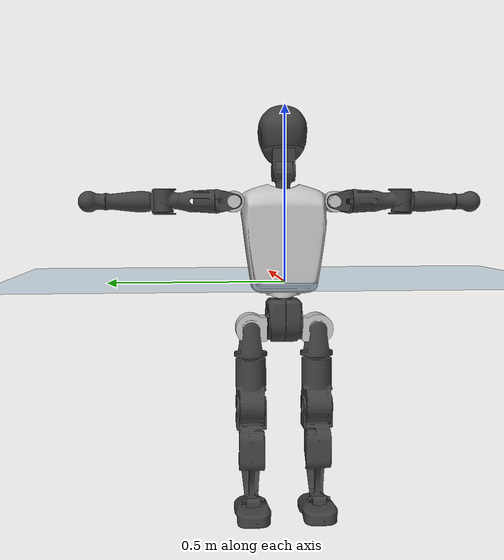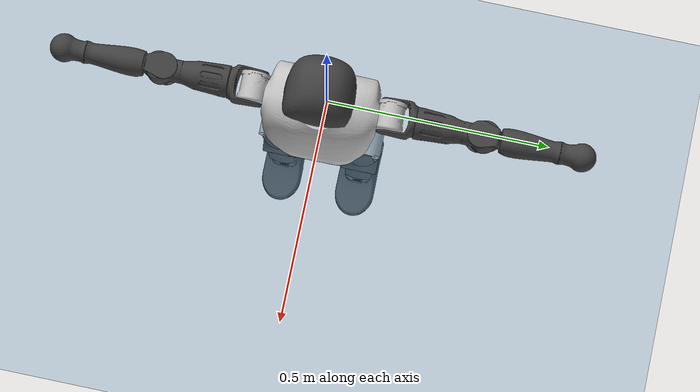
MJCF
<mujoco model="T1">
  <compiler angle="radian" assetdir="assets" balanceinertia="true" inertiafromgeom="false"/>

  <option timestep="0.005" density="1.2" viscosity="2e-05"/>

  <size nkey="1"/>

  <visual>
    <quality shadowsize="8192"/>
    <map shadowclip="0.5"/>
  </visual>

  <default>
    <default class="/">
      <joint armature="0.01" damping="0.01" frictionloss="0.1"/>
      <geom contype="0" conaffinity="0" group="1" solref="-1000 -80"/>
      <site size="0.01 0.005 0.005" group="5"/>
      <general forcelimited="true" biastype="affine" gainprm="25" biasprm="0 -25 -0.6"/>
      <default class="t1">
        <geom rgba="0.25 0.25 0.25 1"/>
        <default class="visual">
          <geom type="mesh" group="2"/>
        </default>
        <default class="collision">
          <geom group="3"/>
        </default>
        <default class="foot">
          <geom size="0.1115 0.05 0.015" type="box" condim="6" group="4" priority="1" solimp="0.015 1 0.015"/>
        </default>
        <default class="reward_collision_sphere">
          <geom group="5" rgba="1 0 0 1"/>
        </default>
      </default>
    </default>
  </default>

  <asset>
    <texture type="skybox" colorspace="auto" name="//unnamed_texture_0" builtin="gradient" rgb1="0.95 0.95 0.95" rgb2="0.95 0.95 0.95" width="100" height="600"/>
    <texture type="2d" colorspace="auto" name="texplane" builtin="checker" rgb1="0.345 0.575 0.748" rgb2="0.345 0.575 0.748" markrgb="1 1 1" width="512" height="512"/>
    <material name="MatPlane" class="/" texture="texplane" texuniform="true" texrepeat="2 2" specular="0.9"/>
    <mesh name="Trunk" class="/" file="Trunk.stl"/>
    <mesh name="H1" class="/" file="H1.stl"/>
    <mesh name="H2" class="/" file="H2.stl"/>
    <mesh name="AL1" class="/" file="AL1.stl"/>
    <mesh name="AL2" class="/" file="AL2.stl"/>
    <mesh name="AL3" class="/" file="AL3.stl"/>
    <mesh name="left_hand_link" class="/" file="left_hand_link.stl"/>
    <mesh name="AR1" class="/" file="AR1.stl"/>
    <mesh name="AR2" class="/" file="AR2.stl"/>
    <mesh name="AR3" class="/" file="AR3.stl"/>
    <mesh name="right_hand_link" class="/" file="right_hand_link.stl"/>
    <mesh name="Waist" class="/" file="Waist.stl"/>
    <mesh name="Hip_Pitch_Left" class="/" file="Hip_Pitch_Left.stl"/>
    <mesh name="Hip_Roll_Left" class="/" file="Hip_Roll_Left.stl"/>
    <mesh name="Hip_Yaw_Left" class="/" file="Hip_Yaw_Left.stl"/>
    <mesh name="Shank_Left" class="/" file="Shank_Left.stl"/>
    <mesh name="Ankle_Cross_Left" class="/" file="Ankle_Cross_Left.stl"/>
    <mesh name="left_foot_link" class="/" file="left_foot_link.stl"/>
    <mesh name="Hip_Pitch_Right" class="/" file="Hip_Pitch_Right.stl"/>
    <mesh name="Hip_Roll_Right" class="/" file="Hip_Roll_Right.stl"/>
    <mesh name="Hip_Yaw_Right" class="/" file="Hip_Yaw_Right.stl"/>
    <mesh name="Shank_Right" class="/" file="Shank_Right.stl"/>
    <mesh name="Ankle_Cross_Right" class="/" file="Ankle_Cross_Right.stl"/>
    <mesh name="right_foot_link" class="/" file="right_foot_link.stl"/>
  </asset>

  <worldbody>
    <geom name="floor" class="/" size="100 100 0.125" type="plane" group="0" material="MatPlane"/>
    <light name="toplight_shadow" class="/" pos="0 0 5" dir="0.0990148 0.0990148 -0.990148" type="directional" ambient="0.04 0.04 0.04" diffuse="0.55 0.55 0.55" specular="0.12 0.12 0.12"/>
    <light name="toplight_fill" class="/" pos="0 0 5" dir="0.0990148 0.0990148 -0.990148" type="directional" castshadow="false" ambient="0.04 0.04 0.04" diffuse="0.3 0.3 0.3" specular="0.08 0.08 0.08"/>
    <body name="trunk" childclass="t1" pos="0.000995242 -0.001394 0.000624203" quat="1 -0.000648043 0.000164094 0.000407297">
      <inertial pos="0.0418823 -0.00128311 0.107976" quat="0.999961 1.81808e-05 -0.00885755 -5.5618e-05" mass="8.7758" diaginertia="0.0236385 0.0539417 0.069869"/>
      <joint name="//unnamed_joint_0" type="free" armature="0" damping="0" frictionloss="0"/>
      <geom name="//unnamed_geom_1" class="visual" rgba="0.76 0.76 0.76 1" mesh="Trunk"/>
      <geom name="//unnamed_geom_2" class="collision" size="0.0681215 0.0908287 0.136243" pos="0.0456249 0 0.12435" type="box"/>
      <geom name="//unnamed_geom_3" class="reward_collision_sphere" size="0.104453" pos="0.0456249 0 0.103625"/>
      <geom name="//unnamed_geom_4" class="reward_collision_sphere" size="0.0136243" pos="0.0456249 0.0788965 0"/>
      <geom name="//unnamed_geom_5" class="reward_collision_sphere" size="0.0136243" pos="0.0456249 -0.0788965 0"/>
      <geom name="//unnamed_geom_6" class="reward_collision_sphere" size="0.0136243" pos="0.0456249 0.0993168 0.186525"/>
      <geom name="//unnamed_geom_7" class="reward_collision_sphere" size="0.0136243" pos="0.0456249 -0.0993168 0.186525"/>
      <site name="imu" pos="0.00312867 0.00416925 -0.00373551" size="0.00908287"/>
      <camera name="track" pos="0 -1.85639 0" quat="0.707107 0.707107 0 0" mode="trackcom"/>
      <camera name="ego_camera" pos="0.0927706 0 0.435226" quat="-0.5 -0.5 0.5 0.5"/>
      <body name="H1" pos="0.0482185 0.00119564 0.251108" quat="1 3.20428e-06 2.85558e-06 1.52922e-06">
        <inertial pos="-0.00229304 -0.00244753 0.0601527" quat="0.762305 -0.00204332 0.000800304 0.647214" mass="0.334936" diaginertia="6.2067e-05 0.000155267 0.000180221"/>
        <joint name="AAHead_yaw" pos="0 0 0" axis="-0.00169807 0.000460492 0.999998" range="-1.55249 1.55194" armature="0.00862197" damping="0.0133392" frictionloss="0.10125"/>
        <geom name="//unnamed_geom_8" class="visual" mesh="H1"/>
        <body name="H2" pos="-0.00121868 -0.000188201 0.0640698" quat="1 3.58754e-06 -7.09984e-06 -1.5216e-05">
          <inertial pos="0.00503319 0.000687025 0.102159" quat="0.988467 0.107384 -0.0767888 -0.0741908" mass="0.461839" diaginertia="0.000513447 0.00128769 0.00207226"/>
          <joint name="Head_pitch" pos="0 0 0" axis="-0.00155621 -0.999999 0.000182181" range="-1.23275 0.361303" armature="0.00817208" damping="0.00513634" frictionloss="0.0942955"/>
          <geom name="//unnamed_geom_9" class="visual" mesh="H2"/>
          <geom name="//unnamed_geom_10" class="collision" size="0.072663" pos="0.00760415 0 0.113988"/>
          <geom name="//unnamed_geom_11" class="reward_collision_sphere" size="0.0817458" pos="0.0152083 0 0.103625"/>
        </body>
      </body>
      <body name="AL1" pos="0.0442158 0.0987283 0.227834" quat="1 -0.000103878 0.000417267 2.48416e-05">
        <inertial pos="-0.000256795 0.0413441 -0.000108752" quat="0.510131 0.500485 -0.497419 0.491787" mass="0.398288" diaginertia="0.000346639 0.000884691 0.000355828"/>
        <joint name="Left_Shoulder_Pitch" pos="0 0 0" axis="-0.000278608 1 -0.000406194" range="-3.30625 1.20157" armature="0.00909587" damping="0.00665504" frictionloss="0.0902759"/>
        <geom name="//unnamed_geom_12" class="visual" rgba="0.76 0.76 0.76 1" mesh="AL1"/>
        <body name="AL2" pos="0.000415296 0.0440854 0.000818766" quat="1 0.000132617 0.000167556 0.000138767">
          <inertial pos="0.00317789 0.0353939 -0.00041247" quat="0.489233 0.511307 -0.486983 0.511921" mass="0.121232" diaginertia="0.000103347 0.0002393 0.000212754"/>
          <joint name="Left_Shoulder_Roll" pos="0 0 0" axis="-0.999999 -0.0016492 0.000270043" stiffness="0.0034932" range="-1.55386 1.73627" armature="0.00908372" damping="0.00355303" frictionloss="0.0886863"/>
          <geom name="//unnamed_geom_13" class="visual" mesh="AL2"/>
          <body name="AL3" pos="0.00198792 0.0564729 0.000124015" quat="1 2.91267e-05 0.000339883 0.000336428">
            <inertial pos="-0.00236873 0.0796591 -0.000494251" quat="0.706369 0.707843 0.000203883 7.65563e-05" mass="0.770353" diaginertia="0.00325061 0.00863683 0.000748056"/>
            <joint name="Left_Elbow_Pitch" pos="0 0 0" axis="0.00182639 -0.999998 0.000612053" range="-2.26696 2.27189" armature="0.0091101" damping="0.00799056" frictionloss="0.091342"/>
            <geom name="//unnamed_geom_14" class="visual" mesh="AL3"/>
            <geom name="//unnamed_geom_15" class="collision" size="0.0272486 0.0681215" pos="0 0.0464097 0" quat="0.707105 0.707108 0 0" type="cylinder"/>
            <geom name="//unnamed_geom_16" class="reward_collision_sphere" size="0.0326983"/>
            <body name="left_hand_link" pos="0.00101897 0.137149 -0.00122018" quat="1 6.34283e-05 -0.000722633 -0.00035968">
              <inertial pos="0.000127834 0.101658 0.000643714" quat="0.707089 0.707121 0.00215937 -0.000454905" mass="0.242304" diaginertia="0.00205668 0.00545413 0.00024645"/>
              <joint name="Left_Elbow_Yaw" pos="0 0 0" axis="0.00232329 -0.00390602 0.99999" stiffness="0.000443727" range="-2.44773 0.0221892" armature="0.00885469" damping="0.0134573" frictionloss="0.0922294"/>
              <geom name="//unnamed_geom_17" class="visual" mesh="left_hand_link"/>
              <geom name="//unnamed_geom_18" class="collision" size="0.0272486 0.0794751" pos="0 0.120665 0" quat="0.707105 0.707108 0 0" type="cylinder"/>
              <geom name="//unnamed_geom_19" class="reward_collision_sphere" size="0.0454144"/>
              <geom name="//unnamed_geom_20" class="reward_collision_sphere" size="0.0317901" pos="0 0.102101 0"/>
              <geom name="//unnamed_geom_21" class="reward_collision_sphere" size="0.0317901" pos="0 0.199562 0"/>
            </body>
          </body>
        </body>
      </body>
      <body name="AR1" pos="0.0427747 -0.0995918 0.227684" quat="1 0.000185976 0.00039991 0.000208537">
        <inertial pos="-0.000848782 -0.0433585 0.00194068" quat="0.505049 0.495235 -0.504303 0.495324" mass="0.399492" diaginertia="0.000350435 0.000874132 0.000351391"/>
        <joint name="Right_Shoulder_Pitch" pos="0 0 0" axis="0.00596677 -0.999969 -0.00521181" range="-1.20831 3.29918" armature="0.00861984" damping="0.00704522" frictionloss="0.0946956"/>
        <geom name="//unnamed_geom_22" class="visual" rgba="0.76 0.76 0.76 1" mesh="AR1"/>
        <body name="AR2" pos="-0.000449911 -0.0421494 0.000579214" quat="1 -7.2425e-06 -0.000177551 -0.000256677">
          <inertial pos="0.00309182 -0.0355365 0.000822007" quat="0.511986 0.485563 -0.512033 0.489817" mass="0.123119" diaginertia="0.000104815 0.000244098 0.0002109"/>
          <joint name="Right_Shoulder_Roll" pos="0 0 0" axis="-0.999985 0.00230522 -0.0049701" stiffness="0.000832784" range="-1.74606 1.569" armature="0.00828438" damping="0.00646681" frictionloss="0.0895804"/>
          <geom name="//unnamed_geom_23" class="visual" mesh="AR2"/>
          <body name="AR3" pos="-0.000735782 -0.0576235 0.00123973" quat="1 0.000243323 0.000430432 6.95544e-05">
            <inertial pos="0.00186761 -0.0787705 0.00158477" quat="0.708203 0.706009 -0.00035698 -0.000400218" mass="0.760862" diaginertia="0.00318185 0.00876626 0.000748266"/>
            <joint name="Right_Elbow_Pitch" pos="0 0 0" axis="0.000578541 1 0.000124095" range="-2.26557 2.27663" armature="0.0092191" damping="0.00676119" frictionloss="0.101249"/>
            <geom name="//unnamed_geom_24" class="visual" mesh="AR3"/>
            <geom name="//unnamed_geom_25" class="collision" size="0.0272486 0.0681215" pos="0 -0.0464097 0" quat="0.707105 0.707108 0 0" type="cylinder"/>
            <geom name="//unnamed_geom_26" class="reward_collision_sphere" size="0.0326983"/>
            <body name="right_hand_link" pos="-0.000573187 -0.136363 -0.00113498" quat="1 -9.53812e-06 -1.83933e-05 2.58559e-05">
              <inertial pos="-0.000354885 -0.102499 0.000862264" quat="0.70648 0.707733 -0.000692489 0.000232367" mass="0.248597" diaginertia="0.00213006 0.00573984 0.000266336"/>
              <joint name="Right_Elbow_Yaw" pos="0 0 0" axis="0.00201531 -0.00776873 0.999968" range="0.0172306 2.43622" armature="0.0094857" damping="0.0091282" frictionloss="0.0889422"/>
              <geom name="//unnamed_geom_27" class="visual" mesh="right_hand_link"/>
              <geom name="//unnamed_geom_28" class="collision" size="0.0272486 0.0794751" pos="0 -0.120665 0" quat="0.707105 0.707108 0 0" type="cylinder"/>
              <geom name="//unnamed_geom_29" class="reward_collision_sphere" size="0.0454144"/>
              <geom name="//unnamed_geom_30" class="reward_collision_sphere" size="0.0317901" pos="0 -0.102101 0"/>
              <geom name="//unnamed_geom_31" class="reward_collision_sphere" size="0.0317901" pos="0 -0.199562 0"/>
            </body>
          </body>
        </body>
      </body>
      <body name="Waist" pos="0.0462873 -4.47399e-05 -0.12047" quat="0.999999 -0.000578362 0.00102654 -0.000459678">
        <inertial pos="-0.000368702 -3.05129e-05 0.00752418" quat="0.984318 0.0036708 -0.175998 0.0113745" mass="1.9142" diaginertia="0.00137436 0.00373329 0.00577223"/>
        <joint name="Waist" pos="0 0 0" axis="-0.000160715 -0.000221602 1" range="-1.56971 1.55853" armature="0.00909575" damping="0.0102719" frictionloss="0.0899781"/>
        <geom name="//unnamed_geom_32" class="visual" mesh="Waist"/>
        <body name="Hip_Pitch_Left" pos="0.00151024 0.0971111 0.00127189" quat="1 3.51073e-05 5.46313e-06 0.000138218">
          <inertial pos="0.00256975 -0.00661357 -0.0186974" quat="0.976349 0.215289 0.0198088 0.00105783" mass="0.767376" diaginertia="0.000447893 0.00101244 0.00150813"/>
          <joint name="Left_Hip_Pitch" pos="0 0 0" axis="-0.000306503 1 -0.00033436" stiffness="0.00464032" range="-1.81789 1.57862" armature="0.00889446" damping="0.00962112" frictionloss="0.0921161"/>
          <geom name="//unnamed_geom_33" class="visual" rgba="0.76 0.76 0.76 1" mesh="Hip_Pitch_Left"/>
          <body name="Hip_Roll_Left" pos="-0.000885392 0.000417802 -0.0241751" quat="1 2.15373e-05 -4.51216e-05 1.84057e-05">
            <inertial pos="0.0010949 -0.00213569 -0.0548935" quat="0.706917 -0.00601724 -0.00574372 0.707248" mass="0.286821" diaginertia="0.000431981 0.00101242 0.000628764"/>
            <joint name="Left_Hip_Roll" pos="0 0 0" axis="-0.999986 0.00248177 -0.00474646" range="-1.56385 0.190959" armature="0.00888161" damping="6.80119e-05" frictionloss="0.0943975"/>
            <geom name="//unnamed_geom_34" class="visual" mesh="Hip_Roll_Left"/>
            <geom name="//unnamed_geom_35" class="reward_collision_sphere" size="0.0499558"/>
            <body name="Hip_Yaw_Left" pos="-0.00063733 -7.74516e-05 -0.0852905" quat="1 2.74334e-05 2.99546e-05 5.27882e-05">
              <inertial pos="-0.00507237 -0.00103987 -0.093151" quat="0.693722 -0.0346763 -0.0293338 0.718809" mass="1.62832" diaginertia="0.00651883 0.0169849 0.00302692"/>
              <joint name="Left_Hip_Yaw" pos="0 0 0" axis="-0.000201739 -0.000996666 -0.999999" range="-1.04877 0.999966" armature="0.00913582" damping="0.00637685" frictionloss="0.0907271"/>
              <geom name="//unnamed_geom_36" class="visual" mesh="Hip_Yaw_Left"/>
              <geom name="//unnamed_geom_37" class="collision" size="0.0454144 0.072663" type="cylinder"/>
              <body name="Shank_Left" pos="-0.0117648 0.000107065 -0.142154" quat="1 2.81812e-05 3.04974e-05 2.40813e-05">
                <inertial pos="-0.00527481 -3.56143e-05 -0.128627" quat="0.997662 0.00157016 -0.0226163 0.0644664" mass="1.29494" diaginertia="0.0088005 0.0230449 0.00218332"/>
                <joint name="Left_Knee_Pitch" pos="0 0 0" axis="0.00433398 0.999981 0.00446649" range="-0.00358146 2.34015" armature="0.00925469" damping="0.00513073" frictionloss="0.089417"/>
                <geom name="//unnamed_geom_38" class="visual" mesh="Shank_Left"/>
                <geom name="//unnamed_geom_39" class="collision" size="0.0454144 0.0681215" pos="0 0 -0.12435" type="cylinder"/>
                <geom name="//unnamed_geom_40" class="reward_collision_sphere" size="0.0590387"/>
                <body name="Ankle_Cross_Left" pos="0.00108531 -0.000373116 -0.289174" quat="1 -0.000189892 -4.82557e-05 -0.000248976">
                  <inertial pos="-0.00501152 -0.000212305 -0.00882436" quat="0.442991 0.551109 0.550967 0.443253" mass="0.0548704" diaginertia="7.39e-06 1.7641e-05 1.33595e-05"/>
                  <joint name="Left_Ankle_Pitch" pos="0 0 0" axis="-0.00159768 0.999999 -0.0002316" range="-0.871615 0.352382" armature="0.0100719" damping="0.0160489" frictionloss="0.0921308"/>
                  <geom name="//unnamed_geom_41" class="visual" mesh="Ankle_Cross_Left"/>
                  <body name="left_foot_link" pos="0.000236365 -0.000847912 -0.0116049" quat="0.999999 0.000548825 -0.000168636 0.000963119">
                    <inertial pos="-0.000901231 0.000575116 -0.00958214" quat="0.00274382 0.624421 -0.00667195 0.781054" mass="0.52662" diaginertia="0.000709931 0.00165473 0.00265217"/>
                    <joint name="Left_Ankle_Roll" pos="0 0 0" axis="-0.999912 -0.0132023 0.000934109" range="-0.456787 0.442301" armature="0.00919768" damping="0.00240328" frictionloss="0.0933978"/>
                    <geom name="//unnamed_geom_42" class="visual" mesh="left_foot_link"/>
                    <geom name="left_foot" class="foot" size="0.107528 0.0433509 0.0139084" pos="0.00760415 0 -0.0155438"/>
                    <geom name="//unnamed_geom_44" class="reward_collision_sphere" size="0.0472309" pos="0.00760415 0 -0.0155438"/>
                    <geom name="//unnamed_geom_45" class="reward_collision_sphere" size="0.0272486" pos="0.0722394 -0.0213485 -0.0155438"/>
                    <geom name="//unnamed_geom_46" class="reward_collision_sphere" size="0.0272486" pos="-0.053229 -0.0213485 -0.0155438"/>
                    <site name="left_foot" class="foot" pos="0.00760415 0 -0.0155438" size="0.00908287"/>
                  </body>
                </body>
              </body>
            </body>
          </body>
        </body>
        <body name="Hip_Pitch_Right" pos="0.00157891 -0.0979189 -0.000933594" quat="1 4.85397e-05 5.18497e-05 2.32367e-05">
          <inertial pos="-0.00162187 0.00545657 -0.0176564" quat="0.972646 -0.231815 0.0136008 -0.00610836" mass="0.762351" diaginertia="0.000463594 0.00101923 0.00147471"/>
          <joint name="Right_Hip_Pitch" pos="0 0 0" axis="0.000445369 -0.999999 0.00148891" range="-1.55989 1.79745" armature="0.00953893" damping="0" frictionloss="0.0863809"/>
          <geom name="//unnamed_geom_47" class="visual" rgba="0.76 0.76 0.76 1" mesh="Hip_Pitch_Right"/>
          <body name="Hip_Roll_Right" pos="-0.00123743 0.000629376 -0.0218549" quat="1 0.000113448 -1.32747e-05 1.28865e-05">
            <inertial pos="0.00085959 -0.0011363 -0.0551191" quat="0.709829 -0.00678761 -0.000571256 0.704341" mass="0.284147" diaginertia="0.000452837 0.00105383 0.00061232"/>
            <joint name="Right_Hip_Roll" pos="0 0 0" axis="-0.999991 0.00395001 0.00144734" range="-0.203637 1.57252" armature="0.00895295" damping="0.00354283" frictionloss="0.0921792"/>
            <geom name="//unnamed_geom_48" class="visual" mesh="Hip_Roll_Right"/>
            <geom name="//unnamed_geom_49" class="reward_collision_sphere" size="0.0499558"/>
            <body name="Hip_Yaw_Right" pos="-0.0013899 8.05062e-05 -0.0863545" quat="1 0.0002854 0.000218209 6.64994e-05">
              <inertial pos="-0.00552431 7.57285e-05 -0.0927204" quat="0.714108 -0.0315576 -0.0332745 0.698532" mass="1.60891" diaginertia="0.00667901 0.0174945 0.00316458"/>
              <joint name="Right_Hip_Yaw" pos="0 0 0" axis="-0.00038634 0.00129184 -0.999999" stiffness="0.00370526" range="-0.996467 1.01216" armature="0.00914983" damping="0.0199108" frictionloss="0.0953832"/>
              <geom name="//unnamed_geom_50" class="visual" mesh="Hip_Yaw_Right"/>
              <geom name="//unnamed_geom_51" class="collision" size="0.0454144 0.072663" type="cylinder"/>
              <body name="Shank_Right" pos="-0.0116734 0.000269539 -0.140697" quat="1 -0.000383898 -2.09592e-05 -4.91935e-06">
                <inertial pos="-0.00496591 -0.00136226 -0.1273" quat="0.999168 0.000167217 -0.0265396 -0.0309655" mass="1.36246" diaginertia="0.00903998 0.0240604 0.00229784"/>
                <joint name="Right_Knee_Pitch" pos="0 0 0" axis="0.00407805 -0.99998 -0.00477203" range="-2.37461 -0.00620961" armature="0.00938234" damping="0.00541565" frictionloss="0.089576"/>
                <geom name="//unnamed_geom_52" class="visual" mesh="Shank_Right"/>
                <geom name="//unnamed_geom_53" class="collision" size="0.0454144 0.0681215" pos="0 0 -0.12435" type="cylinder"/>
                <geom name="//unnamed_geom_54" class="reward_collision_sphere" size="0.0590387"/>
                <body name="Ankle_Cross_Right" pos="0.000722342 -0.00136487 -0.291011" quat="1 -4.01158e-06 1.54173e-05 2.61004e-05">
                  <inertial pos="-0.00307205 -0.000207294 -0.00837027" quat="0.44317 0.550788 0.55118 0.443208" mass="0.0549062" diaginertia="7.54235e-06 1.77083e-05 1.38609e-05"/>
                  <joint name="Right_Ankle_Pitch" pos="0 0 0" axis="-0.00249914 -0.999979 0.00590214" range="-0.351681 0.854717" armature="0.00909313" damping="0.00527476" frictionloss="0.0910634"/>
                  <geom name="//unnamed_geom_55" class="visual" mesh="Ankle_Cross_Right"/>
                  <body name="right_foot_link" pos="-0.000192439 0.000191375 -0.0102109" quat="1 5.46122e-05 -6.56146e-06 0.000113741">
                    <inertial pos="-2.68431e-05 0.00116481 -0.0116574" quat="-0.00362061 0.620509 -0.00568749 0.78417" mass="0.50363" diaginertia="0.000669998 0.00159698 0.00247187"/>
                    <joint name="Right_Ankle_Roll" pos="0 0 0" axis="-0.999985 -0.0051591 0.00155109" range="-0.459467 0.477595" armature="0.00797436" damping="0" frictionloss="0.0928134"/>
                    <geom name="//unnamed_geom_56" class="visual" mesh="right_foot_link"/>
                    <geom name="right_foot" class="foot" size="0.0971972 0.0438971 0.014253" pos="0.00760415 0 -0.0155438"/>
                    <geom name="//unnamed_geom_58" class="reward_collision_sphere" size="0.0363315"/>
                    <geom name="//unnamed_geom_59" class="reward_collision_sphere" size="0.0272486" pos="0.00760415 0 -0.0155438"/>
                    <geom name="//unnamed_geom_60" class="reward_collision_sphere" size="0.0272486" pos="0.0722394 0.0213485 -0.0155438"/>
                    <geom name="//unnamed_geom_61" class="reward_collision_sphere" size="0.0272486" pos="-0.053229 0.0213485 -0.0155438"/>
                    <site name="right_foot" class="foot" pos="0.00760415 0 -0.0155438" size="0.00908287"/>
                  </body>
                </body>
              </body>
            </body>
          </body>
        </body>
      </body>
    </body>
  </worldbody>

  <contact>
    <pair class="/" geom1="floor" geom2="left_foot" name="//unnamed_contact_0"/>
    <pair class="/" geom1="floor" geom2="right_foot" name="//unnamed_contact_1"/>
  </contact>

  <actuator>
    <general name="AAHead_yaw" class="/" joint="AAHead_yaw" forcerange="-6.36832 6.36832" gainprm="23.1929" biasprm="0 -23.1929 -0.526743"/>
    <general name="Head_pitch" class="/" joint="Head_pitch" forcerange="-6.32859 6.32859" gainprm="23.1929" biasprm="0 -23.1929 -0.526743"/>
    <general name="Left_Shoulder_Pitch" class="/" joint="Left_Shoulder_Pitch" forcerange="-14.8767 14.8767" gainprm="23.1929" biasprm="0 -23.1929 -0.526743"/>
    <general name="Left_Shoulder_Roll" class="/" joint="Left_Shoulder_Roll" forcerange="-15.3167 15.3167" gainprm="23.1929" biasprm="0 -23.1929 -0.526743"/>
    <general name="Left_Elbow_Pitch" class="/" joint="Left_Elbow_Pitch" forcerange="-16.5111 16.5111" gainprm="23.1929" biasprm="0 -23.1929 -0.526743"/>
    <general name="Left_Elbow_Yaw" class="/" joint="Left_Elbow_Yaw" forcerange="-16.6203 16.6203" gainprm="23.1929" biasprm="0 -23.1929 -0.526743"/>
    <general name="Right_Shoulder_Pitch" class="/" joint="Right_Shoulder_Pitch" forcerange="-16.5526 16.5526" gainprm="23.1929" biasprm="0 -23.1929 -0.526743"/>
    <general name="Right_Shoulder_Roll" class="/" joint="Right_Shoulder_Roll" forcerange="-16.6428 16.6428" gainprm="23.1929" biasprm="0 -23.1929 -0.526743"/>
    <general name="Right_Elbow_Pitch" class="/" joint="Right_Elbow_Pitch" forcerange="-16.2739 16.2739" gainprm="23.1929" biasprm="0 -23.1929 -0.526743"/>
    <general name="Right_Elbow_Yaw" class="/" joint="Right_Elbow_Yaw" forcerange="-16.7891 16.7891" gainprm="23.1929" biasprm="0 -23.1929 -0.526743"/>
    <general name="Waist" class="/" joint="Waist" forcerange="-26.279 26.279" gainprm="23.1929" biasprm="0 -23.1929 -0.526743"/>
    <general name="Left_Hip_Pitch" class="/" joint="Left_Hip_Pitch" forcerange="-41.4536 41.4536" gainprm="23.1929" biasprm="0 -23.1929 -0.526743"/>
    <general name="Left_Hip_Roll" class="/" joint="Left_Hip_Roll" forcerange="-26.2055 26.2055" gainprm="23.1929" biasprm="0 -23.1929 -0.526743"/>
    <general name="Left_Hip_Yaw" class="/" joint="Left_Hip_Yaw" forcerange="-27.6423 27.6423" gainprm="23.1929" biasprm="0 -23.1929 -0.526743"/>
    <general name="Left_Knee_Pitch" class="/" joint="Left_Knee_Pitch" forcerange="-54.9747 54.9747" gainprm="23.1929" biasprm="0 -23.1929 -0.526743"/>
    <general name="Left_Ankle_Pitch" class="/" joint="Left_Ankle_Pitch" forcerange="-18.0914 18.0914" gainprm="23.1929" biasprm="0 -23.1929 -0.526743"/>
    <general name="Left_Ankle_Roll" class="/" joint="Left_Ankle_Roll" forcerange="-13.131 13.131" gainprm="23.1929" biasprm="0 -23.1929 -0.526743"/>
    <general name="Right_Hip_Pitch" class="/" joint="Right_Hip_Pitch" forcerange="-43.328 43.328" gainprm="23.1929" biasprm="0 -23.1929 -0.526743"/>
    <general name="Right_Hip_Roll" class="/" joint="Right_Hip_Roll" forcerange="-29.4689 29.4689" gainprm="23.1929" biasprm="0 -23.1929 -0.526743"/>
    <general name="Right_Hip_Yaw" class="/" joint="Right_Hip_Yaw" forcerange="-27.4603 27.4603" gainprm="23.1929" biasprm="0 -23.1929 -0.526743"/>
    <general name="Right_Knee_Pitch" class="/" joint="Right_Knee_Pitch" forcerange="-53.2209 53.2209" gainprm="23.1929" biasprm="0 -23.1929 -0.526743"/>
    <general name="Right_Ankle_Pitch" class="/" joint="Right_Ankle_Pitch" forcerange="-16.7153 16.7153" gainprm="23.1929" biasprm="0 -23.1929 -0.526743"/>
    <general name="Right_Ankle_Roll" class="/" joint="Right_Ankle_Roll" forcerange="-14.139 14.139" gainprm="23.1929" biasprm="0 -23.1929 -0.526743"/>
  </actuator>

  <sensor>
    <gyro site="imu" name="imu_angular_velocity"/>
    <velocimeter site="imu" name="imu_linear_velocity"/>
    <framelinvel objtype="site" objname="left_foot" name="left_foot_global_linear_velocity"/>
    <framelinvel objtype="site" objname="right_foot" name="right_foot_global_linear_velocity"/>
  </sensor>

  <keyframe>
    <key name="home" qpos="0 0 0.6385 1 0 0 0 0 0 0 1.4 0 -0.4 0 -1.4 0 0.4 0 -0.4 0 0 0.8 -0.4 0 0.4 0 0 -0.8 0.4 0"/>
  </keyframe>
</mujoco>
